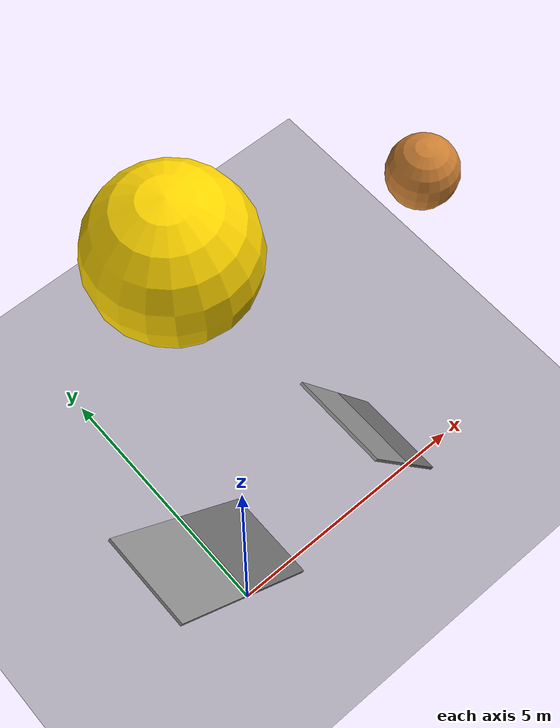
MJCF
<mujoco>
  <option density="1.204" viscosity="1.8e-5" integrator="implicit" />

  <visual>
    <global elevation="-10" />
  </visual>

  <default>
    <geom friction=".2" />
  </default>

  <asset>
    <texture name="metal_texture" type="2d" builtin="flat" width="512" height="512" rgb1="0.8 0.8 0.8" rgb2="0.6 0.6 0.6" />
    <material name="metal" shininess="0.9" reflectance="0.8" specular="1.0" rgba="0.7 0.7 0.7 1" texture="metal_texture" />
  </asset>

  <asset>
    <texture name="grid" type="2d" builtin="checker" width="512" height="512" rgb1="0 0 0" rgb2="0.25 0.25 0.25" />
    <material name="grid" texture="grid" texrepeat="2 2" texuniform="true" reflectance="1" />
  </asset>

  <worldbody>
    <geom name="ground" type="plane" size="10 10 0.001" pos="0 0 0" material="grid" />
    <geom name="ramp1" type="box" size="2 1 0.03" pos="0 1 0" euler="0 45 0" material="metal" />
    <geom name="ramp2" type="box" size="2 1 0.03" pos="4 1 0" euler="0 60 0" material="metal" />

    <body name="ball1" pos="0 0.5 5">
      <freejoint />
      <light pos="0 1 5" dir="-1 0 -3" mode="trackcom"/>
      <light pos="0 1 5" dir="1 0 -3" mode="trackcom" />
      <geom name="ball1" type="sphere" pos="0 0.5 5" size="1" mass="5.0347" rgba="1 0.84 0 1" material="metal" />
      <site name="weight1" pos="0 1 5" size="0.05" />
    </body>

    <body name="ball2" pos="2 0.5 4">
      <freejoint />
      <light pos="2 0.5 4" dir="-1 0 -3" mode="trackcom" />
      <light pos="2 0.5 4" dir="1 0 -3" mode="trackcom" />
      <geom name="ball2" type="sphere" pos="2 0.5 4" size="0.5" mass="20.0347" rgba="0.8 0.5 0.2 1" material="metal" />
      <site name="weight2" pos="2 0.5 4" size="0.05" />
    </body>
  </worldbody>
</mujoco>
